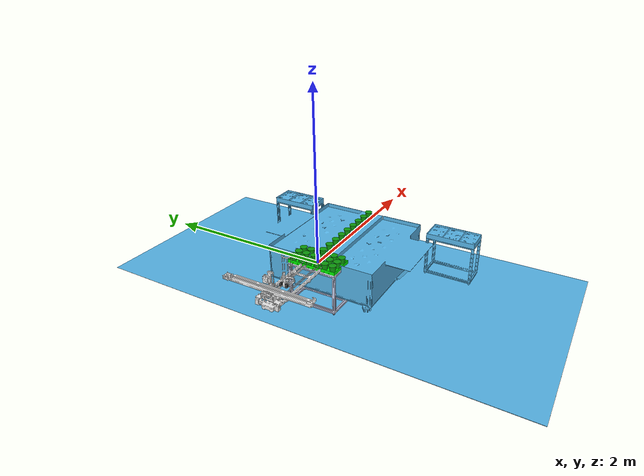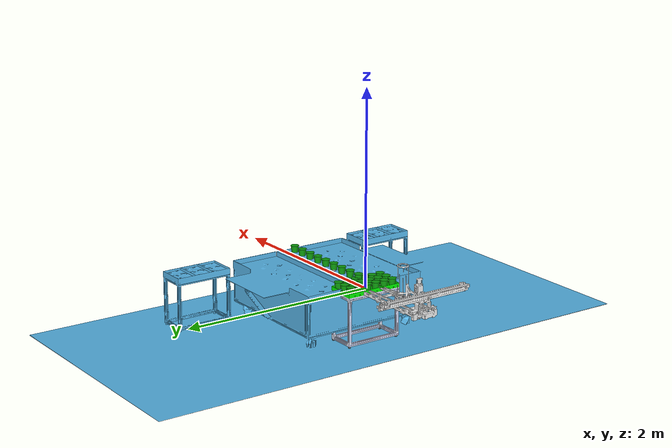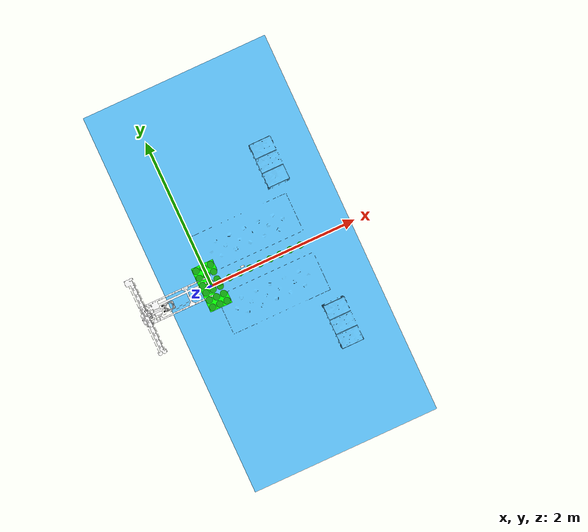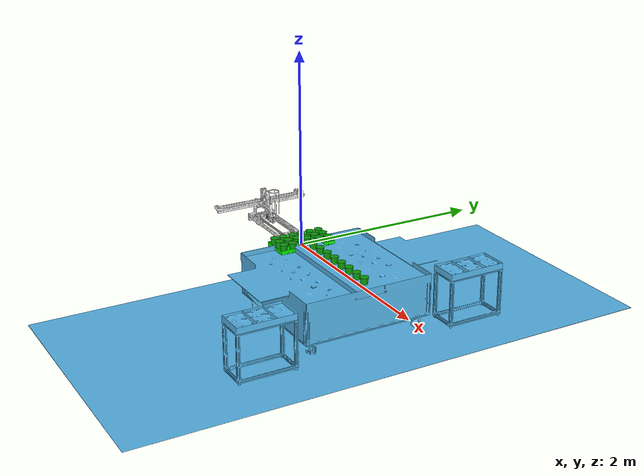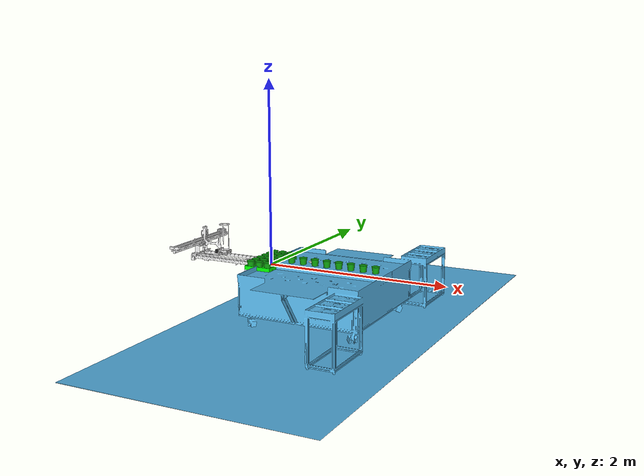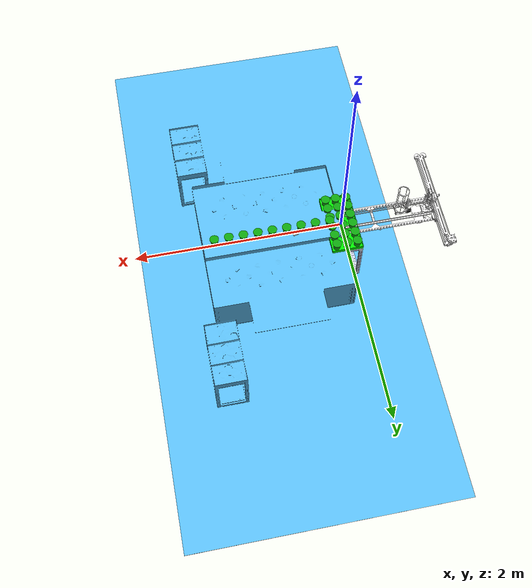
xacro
<?xml version="1.0"?>
<robot name="catchrobo" xmlns:xacro="http://ros.org/wiki/xacro">

  <!-- Arguments -->
  <xacro:arg name="field" default="" />
  <xacro:property name="field" value="$(arg field)" />

  <!-- Dependencies -->
  <xacro:include filename="$(find catchrobo_description)/urdf/common.xacro" />
  <xacro:include filename="$(find catchrobo_description)/urdf/base.urdf.xacro" />
  <xacro:include filename="$(find catchrobo_description)/urdf/arm.urdf.xacro" />
  <xacro:include filename="$(find catchrobo_description)/urdf/gripper.urdf.xacro" />

  <!-- Link & Joint -->
  <link name="world" />

  <xacro:base parent="world">
    <origin xyz="0 0 0" rpy="0 0 0" />
  </xacro:base>

  <xacro:arm prefix="" parent="base/link_tip">
    <origin xyz="0 0 0" rpy="0 0 0" />
  </xacro:arm>

  <xacro:gripper prefix="" parent="arm/link_tip">
    <origin xyz="0 0 0" rpy="0 0 0" />
  </xacro:gripper>

</robot>

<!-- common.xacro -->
<robot xmlns:xacro="http://ros.org/wiki/xacro">
  <!-- Constants -->
  <xacro:property name="M_PI" value="3.1415926535897931"/>
</robot>

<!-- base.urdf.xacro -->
<robot xmlns:xacro="http://ros.org/wiki/xacro">

  <!-- Field Side Parameters-->
  <xacro:arg name="field" default="" />
  <xacro:property name="field" value="$(arg field)" />

  <!-- Dependencies -->
  <xacro:include filename="$(find catchrobo_description)/urdf/common.xacro" />
  <xacro:include filename="$(find catchrobo_description)/urdf/work.urdf.xacro" />

  <!-- Constants -->
  <xacro:property name="visual_mesh_scale" value="1.0 1.0 1.0" />
  <xacro:property name="collision_mesh_scale" value="1.0 1.0 1.0" />

  <!-- Link & Joint -->
  <xacro:macro name="base" params="parent *joint_origin">

    <joint name="base/root" type="fixed">
      <xacro:insert_block name="joint_origin" />
      <parent link="${parent}" />
      <child link="base/base_link" />
    </joint>

    <link name="base/base_link">
      <visual>
        <geometry>
          <mesh filename="package://catchrobo_description/mesh/base/DAE/base.dae" scale="${visual_mesh_scale}" />
        </geometry>
      </visual>
      <collision>
        <geometry>
          <mesh filename="package://catchrobo_description/mesh/base/STL/base.stl" scale="${collision_mesh_scale}" />
        </geometry>
      </collision>
    </link>

    <!-- robot tip -->
    <joint name="base/link_tip" type="fixed">
      <parent link="base/base_link" />
      <child link="base/link_tip" />
      <xacro:if value="${field=='blue'}">
        <origin xyz="0.6767 -0.845 0.00445" rpy="0 0 0" />
      </xacro:if>
      <xacro:if value="${field=='red'}">
        <origin xyz="0.6767 0.845 0.00445" rpy="0 0 0" />
      </xacro:if>
    </joint>
    <link name="base/link_tip" />

    <!-- shooting box tip -->
    <joint name="base/shooter_tip" type="planar">
      <parent link="base/base_link" />
      <child link="base/shooter" />
      <xacro:if value="${field=='blue'}">
        <origin xyz="1.3267 -1.125 0.002" rpy="0 0 0" />
      </xacro:if>
      <xacro:if value="${field=='red'}">
        <origin xyz="1.3267 1.125 0.002" rpy="0 0 0" />
      </xacro:if>
    </joint>
    <link name="base/shooter">
      <visual>
        <geometry>
          <mesh filename="package://catchrobo_description/mesh/base/DAE/shooting_box.dae" scale="${visual_mesh_scale}" />
        </geometry>
      </visual>
      <collision>
        <geometry>
          <mesh filename="package://catchrobo_description/mesh/base/STL/shooting_box.stl" scale="${collision_mesh_scale}" />
        </geometry>
      </collision>
    </link>

    <!-- fixed shooting box tip -->
    <joint name="base/fixed_shooter_tip" type="fixed">
      <parent link="base/base_link" />
      <child link="base/fixed_shooter" />
      <xacro:if value="${field=='blue'}">
        <origin xyz="1.3267 1.125 0.002" rpy="0 0 0" />
      </xacro:if>
      <xacro:if value="${field=='red'}">
        <origin xyz="1.3267 -1.125 0.002" rpy="0 0 0" />
      </xacro:if>
    </joint>
    <link name="base/fixed_shooter">
      <visual>
        <geometry>
          <mesh filename="package://catchrobo_description/mesh/base/DAE/shooting_box.dae" scale="${visual_mesh_scale}" />
        </geometry>
      </visual>
      <collision>
        <geometry>
          <mesh filename="package://catchrobo_description/mesh/base/STL/shooting_box.stl" scale="${collision_mesh_scale}" />
        </geometry>
      </collision>
    </link>

    <!-- work on common area -->
    <xacro:work prefix="work0" parent="base/base_link">
      <origin xyz="0.1166 0 0.031" rpy="0 0 0" />
    </xacro:work>
    <xacro:work prefix="work1" parent="base/base_link">
      <origin xyz="0.2566 0 0.031" rpy="0 0 0" />
    </xacro:work>
    <xacro:work prefix="work2" parent="base/base_link">
      <origin xyz="0.3966 0 0.031" rpy="0 0 0" />
    </xacro:work>
    <xacro:work prefix="work3" parent="base/base_link">
      <origin xyz="0.5366 0 0.031" rpy="0 0 0" />
    </xacro:work>
    <xacro:work prefix="work4" parent="base/base_link">
      <origin xyz="0.6766 0 0.031" rpy="0 0 0" />
    </xacro:work>
    <xacro:work prefix="work5" parent="base/base_link">
      <origin xyz="0.8166 0 0.031" rpy="0 0 0" />
    </xacro:work>
    <xacro:work prefix="work6" parent="base/base_link">
      <origin xyz="0.9566 0 0.031" rpy="0 0 0" />
    </xacro:work>
    <xacro:work prefix="work7" parent="base/base_link">
      <origin xyz="1.0966 0 0.031" rpy="0 0 0" />
    </xacro:work>
    <xacro:work prefix="work8" parent="base/base_link">
      <origin xyz="1.2366 0 0.031" rpy="0 0 0" />
    </xacro:work>

    <!-- work on blue field -->
    <xacro:if value="${field=='blue'}">
      <xacro:work prefix="work9" parent="base/base_link">
        <origin xyz="0.2767 -0.297 0" rpy="0 0 0" />
      </xacro:work>
      <xacro:work prefix="work10" parent="base/base_link">
        <origin xyz="0.4767 -0.297 0" rpy="0 0 0" />
      </xacro:work>
      <xacro:work prefix="work11" parent="base/base_link">
        <origin xyz="0.6767 -0.297 0" rpy="0 0 0" />
      </xacro:work>
      <xacro:work prefix="work12" parent="base/base_link">
        <origin xyz="0.8767 -0.297 0" rpy="0 0 0" />
      </xacro:work>
      <xacro:work prefix="work13" parent="base/base_link">
        <origin xyz="1.0767 -0.297 0" rpy="0 0 0" />
      </xacro:work>

      <xacro:work prefix="work14" parent="base/base_link">
        <origin xyz="0.1767 -0.397 0" rpy="0 0 0" />
      </xacro:work>
      <xacro:work prefix="work15" parent="base/base_link">
        <origin xyz="0.3767 -0.397 0" rpy="0 0 0" />
      </xacro:work>
      <xacro:work prefix="work16" parent="base/base_link">
        <origin xyz="0.5767 -0.397 0" rpy="0 0 0" />
      </xacro:work>
      <xacro:work prefix="work17" parent="base/base_link">
        <origin xyz="0.7767 -0.397 0" rpy="0 0 0" />
      </xacro:work>
      <xacro:work prefix="work18" parent="base/base_link">
        <origin xyz="0.9767 -0.397 0" rpy="0 0 0" />
      </xacro:work>
      <xacro:work prefix="work19" parent="base/base_link">
        <origin xyz="1.1767 -0.397 0" rpy="0 0 0" />
      </xacro:work>

      <xacro:work prefix="work20" parent="base/base_link">
        <origin xyz="0.2767 -0.497 0" rpy="0 0 0" />
      </xacro:work>
      <xacro:work prefix="work21" parent="base/base_link">
        <origin xyz="0.4767 -0.497 0" rpy="0 0 0" />
      </xacro:work>
      <xacro:work prefix="work22" parent="base/base_link">
        <origin xyz="0.6767 -0.497 0" rpy="0 0 0" />
      </xacro:work>
      <xacro:work prefix="work23" parent="base/base_link">
        <origin xyz="0.8767 -0.497 0" rpy="0 0 0" />
      </xacro:work>
      <xacro:work prefix="work24" parent="base/base_link">
        <origin xyz="1.0767 -0.497 0" rpy="0 0 0" />
      </xacro:work>
    </xacro:if>

    <!-- work on red field -->
    <xacro:if value="${field=='red'}">
      <xacro:work prefix="work9" parent="base/base_link">
        <origin xyz="0.2767 0.297 0" rpy="0 0 0" />
      </xacro:work>
      <xacro:work prefix="work10" parent="base/base_link">
        <origin xyz="0.4767 0.297 0" rpy="0 0 0" />
      </xacro:work>
      <xacro:work prefix="work11" parent="base/base_link">
        <origin xyz="0.6767 0.297 0" rpy="0 0 0" />
      </xacro:work>
      <xacro:work prefix="work12" parent="base/base_link">
        <origin xyz="0.8767 0.297 0" rpy="0 0 0" />
      </xacro:work>
      <xacro:work prefix="work13" parent="base/base_link">
        <origin xyz="1.0767 0.297 0" rpy="0 0 0" />
      </xacro:work>

      <xacro:work prefix="work14" parent="base/base_link">
        <origin xyz="0.1767 0.397 0" rpy="0 0 0" />
      </xacro:work>
      <xacro:work prefix="work15" parent="base/base_link">
        <origin xyz="0.3767 0.397 0" rpy="0 0 0" />
      </xacro:work>
      <xacro:work prefix="work16" parent="base/base_link">
        <origin xyz="0.5767 0.397 0" rpy="0 0 0" />
      </xacro:work>
      <xacro:work prefix="work17" parent="base/base_link">
        <origin xyz="0.7767 0.397 0" rpy="0 0 0" />
      </xacro:work>
      <xacro:work prefix="work18" parent="base/base_link">
        <origin xyz="0.9767 0.397 0" rpy="0 0 0" />
      </xacro:work>
      <xacro:work prefix="work19" parent="base/base_link">
        <origin xyz="1.1767 0.397 0" rpy="0 0 0" />
      </xacro:work>

      <xacro:work prefix="work20" parent="base/base_link">
        <origin xyz="0.2767 0.497 0" rpy="0 0 0" />
      </xacro:work>
      <xacro:work prefix="work21" parent="base/base_link">
        <origin xyz="0.4767 0.497 0" rpy="0 0 0" />
      </xacro:work>
      <xacro:work prefix="work22" parent="base/base_link">
        <origin xyz="0.6767 0.497 0" rpy="0 0 0" />
      </xacro:work>
      <xacro:work prefix="work23" parent="base/base_link">
        <origin xyz="0.8767 0.497 0" rpy="0 0 0" />
      </xacro:work>
      <xacro:work prefix="work24" parent="base/base_link">
        <origin xyz="1.0767 0.497 0" rpy="0 0 0" />
      </xacro:work>
    </xacro:if>

    <!-- work in shooting box -->
    <xacro:work prefix="shot_work0" parent="base/shooter">
      <origin xyz="-0.1 0.251 0" rpy="0 0 0" />
    </xacro:work>
    <xacro:work prefix="shot_work1" parent="base/shooter">
      <origin xyz="0 0.251 0" rpy="0 0 0" />
    </xacro:work>
    <xacro:work prefix="shot_work2" parent="base/shooter">
      <origin xyz="0.1 0.251 0" rpy="0 0 0" />
    </xacro:work>

    <xacro:work prefix="shot_work3" parent="base/shooter">
      <origin xyz="-0.1 0.151 0" rpy="0 0 0" />
    </xacro:work>
    <xacro:work prefix="shot_work4" parent="base/shooter">
      <origin xyz="0 0.151 0" rpy="0 0 0" />
    </xacro:work>
    <xacro:work prefix="shot_work5" parent="base/shooter">
      <origin xyz="0.1 0.151 0" rpy="0 0 0" />
    </xacro:work>

    <xacro:work prefix="shot_work6" parent="base/shooter">
      <origin xyz="-0.1 0.05 0" rpy="0 0 0" />
    </xacro:work>
    <xacro:work prefix="shot_work7" parent="base/shooter">
      <origin xyz="0 0.05 0" rpy="0 0 0" />
    </xacro:work>
    <xacro:work prefix="shot_work8" parent="base/shooter">
      <origin xyz="0.1 0.05 0" rpy="0 0 0" />
    </xacro:work>

    <xacro:work prefix="shot_work9" parent="base/shooter">
      <origin xyz="-0.1 -0.05 0" rpy="0 0 0" />
    </xacro:work>
    <xacro:work prefix="shot_work10" parent="base/shooter">
      <origin xyz="0 -0.05 0" rpy="0 0 0" />
    </xacro:work>
    <xacro:work prefix="shot_work11" parent="base/shooter">
      <origin xyz="0.1 -0.05 0" rpy="0 0 0" />
    </xacro:work>

    <xacro:work prefix="shot_work12" parent="base/shooter">
      <origin xyz="-0.1 -0.151 0" rpy="0 0 0" />
    </xacro:work>
    <xacro:work prefix="shot_work13" parent="base/shooter">
      <origin xyz="0 -0.151 0" rpy="0 0 0" />
    </xacro:work>
    <xacro:work prefix="shot_work14" parent="base/shooter">
      <origin xyz="0.1 -0.151 0" rpy="0 0 0" />
    </xacro:work>

    <xacro:work prefix="shot_work15" parent="base/shooter">
      <origin xyz="-0.1 -0.251 0" rpy="0 0 0" />
    </xacro:work>
    <xacro:work prefix="shot_work16" parent="base/shooter">
      <origin xyz="0 -0.251 0" rpy="0 0 0" />
    </xacro:work>
    <xacro:work prefix="shot_work17" parent="base/shooter">
      <origin xyz="0.1 -0.251 0" rpy="0 0 0" />
    </xacro:work>

  </xacro:macro>
</robot>

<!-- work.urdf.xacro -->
<robot xmlns:xacro="http://ros.org/wiki/xacro">

  <!-- Constants -->
  <xacro:property name="visual_mesh_scale" value="1.0 1.0 1.0"/>
  <xacro:property name="collision_mesh_scale" value="1.0 1.0 1.0"/>

  <!-- Link & Joint -->
  <xacro:macro name="work" params="prefix parent *joint_origin">

    <joint name="${prefix}/root" type="fixed">
      <xacro:insert_block name="joint_origin"/>
      <parent link="${parent}"/>
      <child link="${prefix}/base_link"/>
    </joint>

    <link name="${prefix}/base_link">
      <visual>
        <geometry>
          <mesh filename="package://catchrobo_description/mesh/work/DAE/work.dae" scale="${visual_mesh_scale}"/>
        </geometry>
      </visual>
      <collision>
        <geometry>
          <mesh filename="package://catchrobo_description/mesh/work/STL/work.stl" scale="${collision_mesh_scale}"/>
        </geometry>
      </collision>
    </link>

  </xacro:macro>
</robot>

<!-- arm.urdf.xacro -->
<robot xmlns:xacro="http://ros.org/wiki/xacro">

  <!-- Constants -->
  <xacro:property name="visual_mesh_scale" value="1.0 1.0 1.0"/>
  <xacro:property name="collision_mesh_scale" value="1.0 1.0 1.0"/>

  <!-- Link & Joint -->
  <xacro:macro name="arm" params="prefix parent *joint_origin">

    <joint name="${prefix}arm/root" type="fixed">
      <xacro:insert_block name="joint_origin" />
      <parent link="${parent}" />
      <child link="${prefix}arm/link0" />
    </joint>

    <link name="${prefix}arm/link0">
      <visual>
        <geometry>
          <mesh filename="package://catchrobo_description/mesh/arm/DAE/link0.dae" scale="${visual_mesh_scale}"/>
        </geometry>
        <material name="white"/>
      </visual>
      <collision>
        <geometry>
          <mesh filename="package://catchrobo_description/mesh/arm/STL/link0.stl" scale="${collision_mesh_scale}"/>
        </geometry>
      </collision>
    </link>

    <joint name="${prefix}arm/joint1" type="prismatic">
      <parent link="${prefix}arm/link0"/>
      <child link="${prefix}arm/link1"/>
      <origin xyz="-0.90625 0 0.0485" rpy="${90*M_PI/180} 0 ${90*M_PI/180}"/>
      <axis xyz="0 0 1"/>
      <limit lower="0" upper="1.3525" effort="10" velocity="5" acceleration="5"/>
    </joint>

    <link name="${prefix}arm/link1">
      <visual>
        <geometry>
          <mesh filename="package://catchrobo_description/mesh/arm/DAE/link1.dae" scale="${visual_mesh_scale}"/>
        </geometry>
        <material name="white"/>
      </visual>
      <collision>
        <geometry>
          <mesh filename="package://catchrobo_description/mesh/arm/STL/link1.stl" scale="${collision_mesh_scale}"/>
        </geometry>
      </collision>
    </link>

    <joint name="${prefix}arm/joint2" type="prismatic">
      <parent link="${prefix}arm/link1"/>
      <child link="${prefix}arm/link2_1"/>
      <origin xyz="0 0.1135 0" rpy="0 ${-90*M_PI/180} ${180*M_PI/180}"/>
      <axis xyz="0 0 1"/>
      <limit lower="-0.43925" upper="0.43925" effort="10" velocity="5" acceleration="5"/>
    </joint>

    <link name="${prefix}arm/link2_1">
      <visual>
        <geometry>
          <mesh filename="package://catchrobo_description/mesh/arm/DAE/link2_1.dae" scale="${visual_mesh_scale}"/>
        </geometry>
        <material name="white"/>
      </visual>
      <collision>
        <geometry>
          <mesh filename="package://catchrobo_description/mesh/arm/STL/link2_1.stl" scale="${collision_mesh_scale}"/>
        </geometry>
      </collision>
    </link>

    <joint name="${prefix}arm/joint2_mimic" type="prismatic">
      <parent link="${prefix}arm/link2_1"/>
      <child link="${prefix}arm/link2_2"/>
      <origin xyz="0.044 0 0" rpy="0 0 0"/>
      <axis xyz="0 0 1"/>
      <limit lower="-0.43925" upper="${0.43925*2}" effort="10" velocity="5" acceleration="5"/>
       <mimic joint="${prefix}arm/joint2" multiplier="1" offset="0" />
    </joint>

    <link name="${prefix}arm/link2_2">
      <visual>
        <geometry>
          <mesh filename="package://catchrobo_description/mesh/arm/DAE/link2_2.dae" scale="${visual_mesh_scale}"/>
        </geometry>
        <material name="white"/>
      </visual>
      <collision>
        <geometry>
          <mesh filename="package://catchrobo_description/mesh/arm/STL/link2_2.stl" scale="${collision_mesh_scale}"/>
        </geometry>
      </collision>
    </link>

    <joint name="${prefix}arm/joint3" type="prismatic">
      <parent link="${prefix}arm/link2_2"/>
      <child link="${prefix}arm/link3"/>
      <origin xyz="0.0266 0 -0.0095" rpy="${90*M_PI/180} 0 0"/>
      <axis xyz="0 0 1"/>
      <limit lower="0" upper="0.145" effort="10" velocity="5" acceleration="5"/>
    </joint>

    <link name="${prefix}arm/link3">
      <visual>
        <geometry>
          <mesh filename="package://catchrobo_description/mesh/arm/DAE/link3.dae" scale="${visual_mesh_scale}"/>
        </geometry>
        <material name="white"/>
      </visual>
      <collision>
        <geometry>
          <mesh filename="package://catchrobo_description/mesh/arm/STL/link3.stl" scale="${collision_mesh_scale}"/>
        </geometry>
      </collision>
    </link>

    <joint name="${prefix}arm/joint_tip" type="fixed">
      <parent link="${prefix}arm/link3"/>
      <child link="${prefix}arm/link_tip"/>
      <origin xyz="0 0 0" rpy="0 0 0"/>
    </joint>
    <link name="${prefix}arm/link_tip"/>

  </xacro:macro>
</robot>

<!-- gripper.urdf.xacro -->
<robot xmlns:xacro="http://ros.org/wiki/xacro">

  <!-- Constants -->
  <xacro:property name="visual_mesh_scale" value="1.0 1.0 1.0"/>
  <xacro:property name="collision_mesh_scale" value="1.0 1.0 1.0"/>

  <!-- Link & Joint -->
  <xacro:macro name="gripper" params="prefix parent *joint_origin">

    <joint name="${prefix}gripper/root" type="fixed">
      <xacro:insert_block name="joint_origin" />
      <parent link="${parent}" />
      <child link="${prefix}gripper/base_link" />
    </joint>

    <link name="${prefix}gripper/base_link">
      <visual>
        <geometry>
          <mesh filename="package://catchrobo_description/mesh/gripper/DAE/base.dae" scale="${visual_mesh_scale}"/>
        </geometry>
      </visual>
      <collision>
        <geometry>
          <mesh filename="package://catchrobo_description/mesh/gripper/STL/base.stl" scale="${collision_mesh_scale}"/>
        </geometry>
      </collision>
    </link>

    <joint name="${prefix}gripper/joint1" type="revolute">
      <parent link="${prefix}gripper/base_link"/>
      <child link="${prefix}gripper/left_finger"/>
      <origin xyz="0.2511 0.0365 -0.086" rpy="${90*M_PI/180} 0 ${90*M_PI/180}"/>
      <axis xyz="0 0 1"/>
      <limit lower="${0*M_PI/180}" upper="${90*M_PI/180}" effort="6"
              velocity="5" acceleration="5"/>
    </joint>

    <link name="${prefix}gripper/left_finger">
      <visual>
        <geometry>
          <mesh filename="package://catchrobo_description/mesh/gripper/DAE/left_finger.dae" scale="${visual_mesh_scale}"/>
        </geometry>
      </visual>
      <collision>
        <geometry>
          <mesh filename="package://catchrobo_description/mesh/gripper/STL/left_finger.stl" scale="${collision_mesh_scale}"/>
        </geometry>
      </collision>
    </link>

    <joint name="${prefix}gripper/joint1_mimic" type="revolute">
      <parent link="${prefix}gripper/base_link"/>
      <child link="${prefix}gripper/right_finger"/>
      <origin xyz="0.2511 -0.0365 -0.086" rpy="${90*M_PI/180} 0 ${90*M_PI/180}"/>
      <axis xyz="0 0 1"/>
      <limit lower="${0*M_PI/180}" upper="${90*M_PI/180}" effort="6"
              velocity="5" acceleration="5"/>
      <mimic joint="${prefix}gripper/joint1" multiplier="-1" offset="0" />
    </joint>

    <link name="${prefix}gripper/right_finger">
      <visual>
        <geometry>
          <mesh filename="package://catchrobo_description/mesh/gripper/DAE/right_finger.dae" scale="${visual_mesh_scale}"/>
        </geometry>
      </visual>
      <collision>
        <geometry>
          <mesh filename="package://catchrobo_description/mesh/gripper/STL/right_finger.stl" scale="${collision_mesh_scale}"/>
        </geometry>
      </collision>
    </link>

    <joint name="${prefix}gripper/grasping_frame_joint" type="fixed">
      <parent link="${prefix}gripper/base_link"/>
      <child link="${prefix}gripper/grasping_frame"/>
      <origin xyz="0.2511 0 -0.1" rpy="0 0 0"/>
    </joint>
    <link name="${prefix}gripper/grasping_frame"/>

  </xacro:macro>
</robot>
